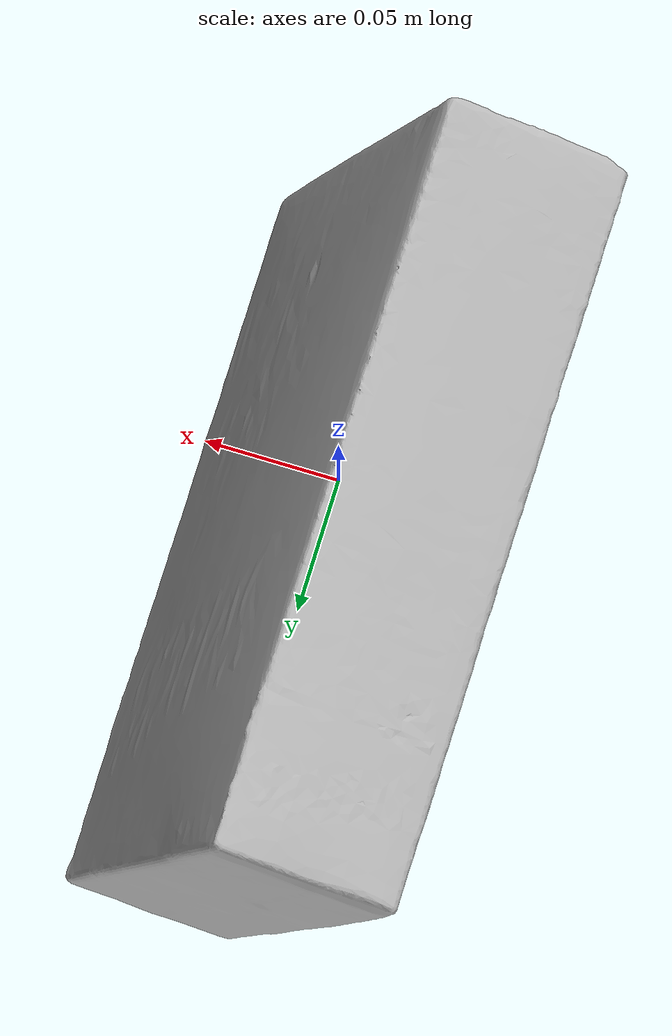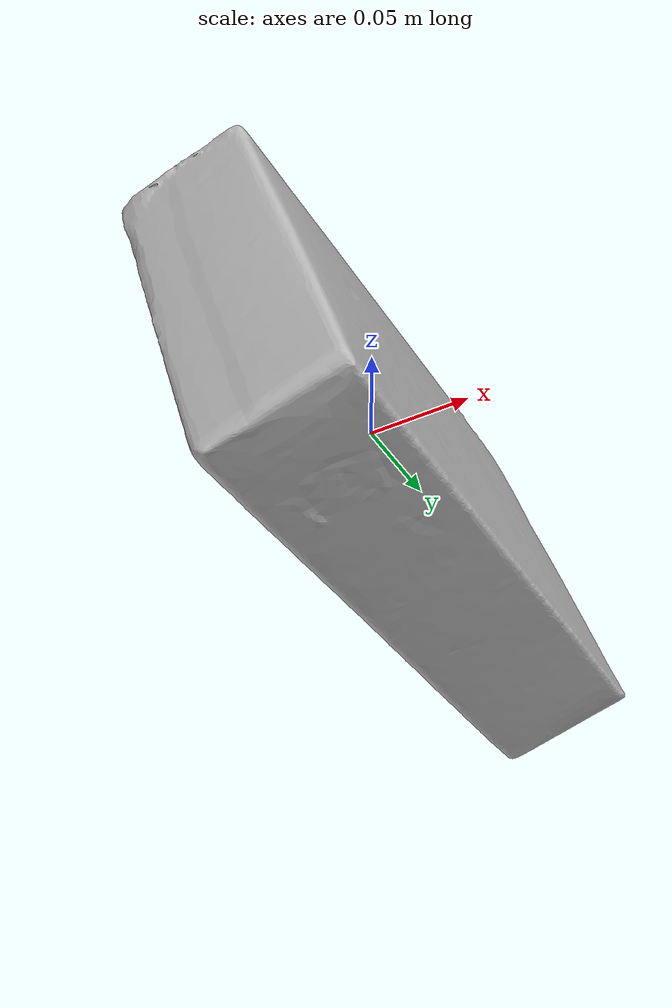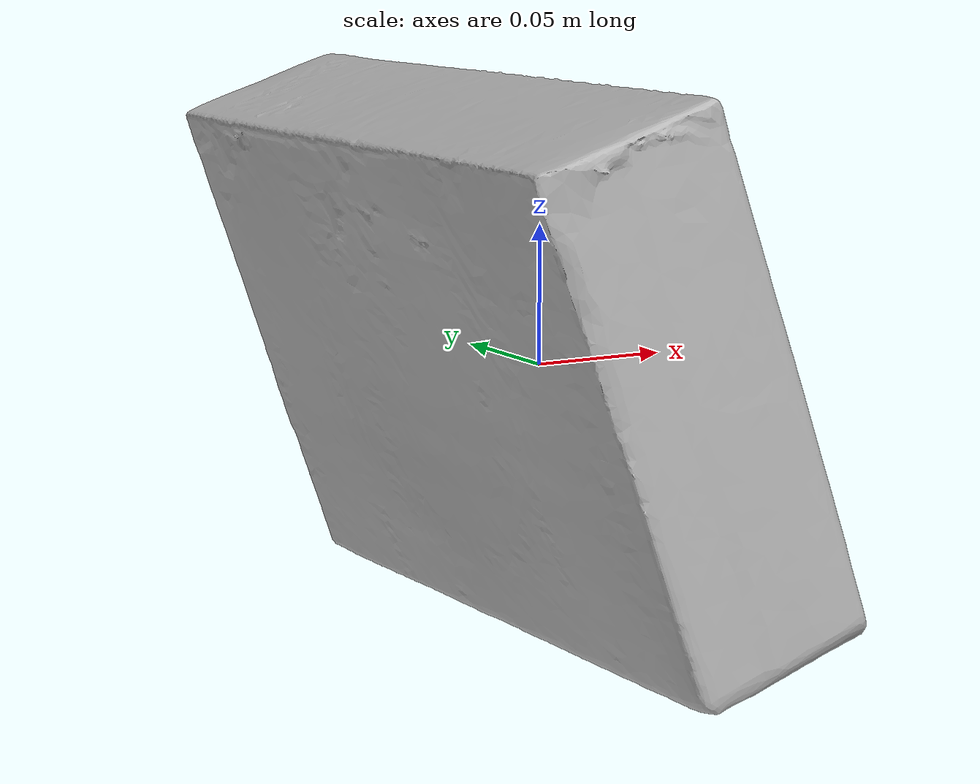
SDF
<?xml version='1.0'?>
<sdf version="1.4">
  <model name="SmacksCereals">
    <static>false</static>
    <link name="link">
      <inertial>
        <pose>-0.00503816599285648 0.018907617182842673 0.0019010074012547104 -1.5730898558274313 0.3371917239590609 3.138772563693909</pose>
        <mass>0.3841393551368744</mass>
        <inertia>
          <ixx>0.003594755599759108</ixx>
          <ixy>-3.8146653606824846e-19</ixy>
          <ixz>2.006240155522482e-19</ixz>
          <iyy>0.0025891897234269243</iyy>
          <iyz>5.917132067261973e-19</iyz>
          <izz>0.001335682573866065</izz>
        </inertia>
      </inertial>
      <collision name="collision">
        <geometry>
          <mesh>
            <!-- Use a downsampled mesh for collisions -->
            <uri>model:///SmacksCereals/SmacksCereals_250_collision.obj</uri>
	        </mesh>
        </geometry>
        <surface>
      </surface>
      </collision>
      <visual name="visual">
        <geometry>
          <mesh>
            <uri>model:///SmacksCereals/SmacksCereals_25k_tex.obj</uri>
	        </mesh>
        </geometry>
        <material>
          <script>
            <uri>model:///SmacksCereals/SmacksCereals.material</uri>
            <name>SmacksCereals</name>
          </script>
        </material>
      </visual>
    </link>
  </model>
</sdf>
